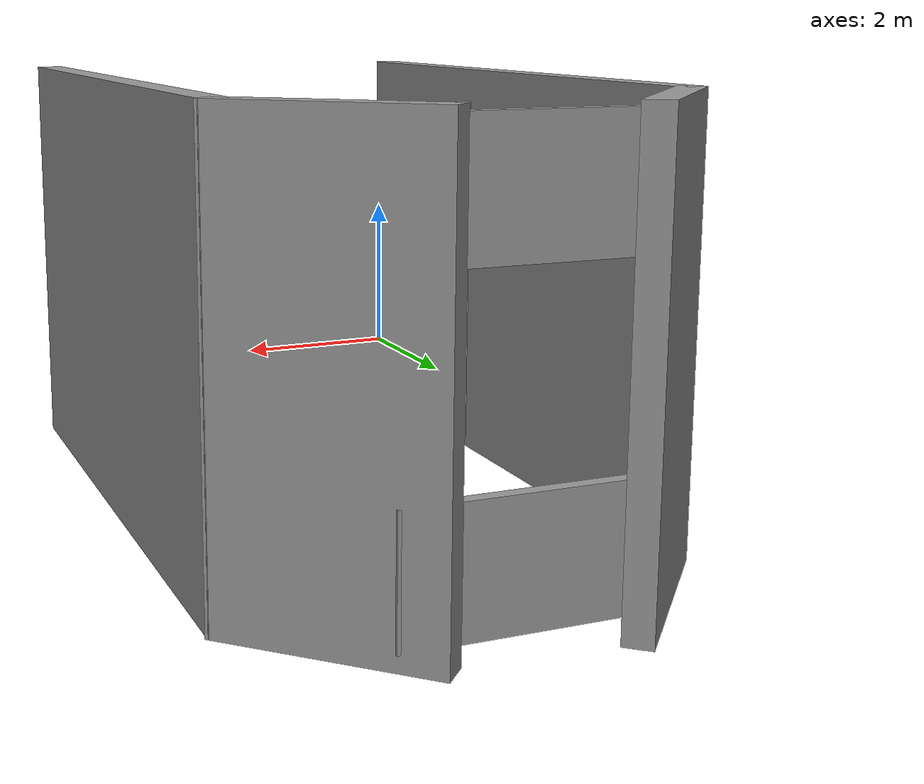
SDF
<?xml version='1.0'?>
<sdf version='1.7'>
  <model name='tembok_kematian'>
    <link name='link'>
      <inertial>
        <mass>8.31484</mass>
        <inertia>
          <ixx>45.0049</ixx>
          <ixy>0</ixy>
          <ixz>0</ixz>
          <iyy>13.7643</iyy>
          <iyz>0</iyz>
          <izz>31.3477</izz>
        </inertia>
        <pose>0 0 0 0 -0 0</pose>
      </inertial>
      <self_collide>0</self_collide>
      <enable_wind>0</enable_wind>
      <kinematic>0</kinematic>
      <pose>5.02148 5.10838 1.90447 0 -0 0</pose>
      <gravity>0</gravity>
      <visual name='visual'>
        <geometry>
          <box>
            <size>0.27805 6.7204 4.44831</size>
          </box>
        </geometry>
        <material>
          <script>
            <name>Gazebo/Grey</name>
            <uri>file://media/materials/scripts/gazebo.material</uri>
          </script>
          <shader type='pixel'>
            <normal_map>__default__</normal_map>
          </shader>
          <emissive>0 0 0 1</emissive>
        </material>
        <pose>0 0 0 0 -0 0</pose>
        <transparency>0</transparency>
        <cast_shadows>1</cast_shadows>
      </visual>
      <collision name='collision'>
        <laser_retro>0</laser_retro>
        <max_contacts>10</max_contacts>
        <pose>0 0 0 0 -0 0</pose>
        <geometry>
          <box>
            <size>0.27805 6.7204 4.44831</size>
          </box>
        </geometry>
        <surface>
          <friction>
            <ode>
              <mu>1</mu>
              <mu2>1</mu2>
              <fdir1>0 0 0</fdir1>
              <slip1>0</slip1>
              <slip2>0</slip2>
            </ode>
            <torsional>
              <coefficient>1</coefficient>
              <patch_radius>0</patch_radius>
              <surface_radius>0</surface_radius>
              <use_patch_radius>1</use_patch_radius>
              <ode>
                <slip>0</slip>
              </ode>
            </torsional>
          </friction>
          <bounce>
            <restitution_coefficient>0</restitution_coefficient>
            <threshold>1e+06</threshold>
          </bounce>
          <contact>
            <collide_without_contact>0</collide_without_contact>
            <collide_without_contact_bitmask>1</collide_without_contact_bitmask>
            <collide_bitmask>1</collide_bitmask>
            <ode>
              <soft_cfm>0</soft_cfm>
              <soft_erp>0.2</soft_erp>
              <kp>1e+13</kp>
              <kd>1</kd>
              <max_vel>0.01</max_vel>
              <min_depth>0</min_depth>
            </ode>
            <bullet>
              <split_impulse>1</split_impulse>
              <split_impulse_penetration_threshold>-0.01</split_impulse_penetration_threshold>
              <soft_cfm>0</soft_cfm>
              <soft_erp>0.2</soft_erp>
              <kp>1e+13</kp>
              <kd>1</kd>
            </bullet>
          </contact>
        </surface>
      </collision>
    </link>
    <link name='link_clone'>
      <inertial>
        <mass>8.43633</mass>
        <inertia>
          <ixx>46.6025</ixx>
          <ixy>0</ixy>
          <ixz>0</ixz>
          <iyy>13.9655</iyy>
          <iyz>0</iyz>
          <izz>32.7458</izz>
        </inertia>
        <pose>0 0 0 0 -0 0</pose>
      </inertial>
      <self_collide>0</self_collide>
      <enable_wind>0</enable_wind>
      <kinematic>0</kinematic>
      <pose>0.602375 5.06403 1.90447 0 -0 0</pose>
      <gravity>0</gravity>
      <visual name='visual'>
        <geometry>
          <box>
            <size>0.27805 6.81916 4.44831</size>
          </box>
        </geometry>
        <material>
          <script>
            <name>Gazebo/Grey</name>
            <uri>file://media/materials/scripts/gazebo.material</uri>
          </script>
          <shader type='pixel'>
            <normal_map>__default__</normal_map>
          </shader>
          <emissive>0 0 0 1</emissive>
        </material>
        <pose>0 0 0 0 -0 0</pose>
        <transparency>0</transparency>
        <cast_shadows>1</cast_shadows>
      </visual>
      <collision name='collision'>
        <laser_retro>0</laser_retro>
        <max_contacts>10</max_contacts>
        <pose>0 0 0 0 -0 0</pose>
        <geometry>
          <box>
            <size>0.27805 6.81916 4.44831</size>
          </box>
        </geometry>
        <surface>
          <friction>
            <ode>
              <mu>1</mu>
              <mu2>1</mu2>
              <fdir1>0 0 0</fdir1>
              <slip1>0</slip1>
              <slip2>0</slip2>
            </ode>
            <torsional>
              <coefficient>1</coefficient>
              <patch_radius>0</patch_radius>
              <surface_radius>0</surface_radius>
              <use_patch_radius>1</use_patch_radius>
              <ode>
                <slip>0</slip>
              </ode>
            </torsional>
          </friction>
          <bounce>
            <restitution_coefficient>0</restitution_coefficient>
            <threshold>1e+06</threshold>
          </bounce>
          <contact>
            <collide_without_contact>0</collide_without_contact>
            <collide_without_contact_bitmask>1</collide_without_contact_bitmask>
            <collide_bitmask>1</collide_bitmask>
            <ode>
              <soft_cfm>0</soft_cfm>
              <soft_erp>0.2</soft_erp>
              <kp>1e+13</kp>
              <kd>1</kd>
              <max_vel>0.01</max_vel>
              <min_depth>0</min_depth>
            </ode>
            <bullet>
              <split_impulse>1</split_impulse>
              <split_impulse_penetration_threshold>-0.01</split_impulse_penetration_threshold>
              <soft_cfm>0</soft_cfm>
              <soft_erp>0.2</soft_erp>
              <kp>1e+13</kp>
              <kd>1</kd>
            </bullet>
          </contact>
        </surface>
      </collision>
    </link>
    <link name='link_clone_0'>
      <inertial>
        <mass>0.755513</mass>
        <inertia>
          <ixx>1.3548</ixx>
          <ixy>0</ixy>
          <ixz>0</ixz>
          <iyy>0.118161</iyy>
          <iyz>0</iyz>
          <izz>1.23861</izz>
        </inertia>
        <pose>0 0 0 0 -0 0</pose>
      </inertial>
      <self_collide>0</self_collide>
      <enable_wind>0</enable_wind>
      <kinematic>0</kinematic>
      <pose>2.78886 2.00997 1.50785 0 -0 1.55834</pose>
      <gravity>0</gravity>
      <visual name='visual'>
        <geometry>
          <box>
            <size>0.125195 4.43368 1.36422</size>
          </box>
        </geometry>
        <material>
          <script>
            <name>Gazebo/Grey</name>
            <uri>file://media/materials/scripts/gazebo.material</uri>
          </script>
          <shader type='pixel'>
            <normal_map>__default__</normal_map>
          </shader>
          <emissive>0 0 0 1</emissive>
        </material>
        <pose>0 0 0 0 -0 0</pose>
        <transparency>0</transparency>
        <cast_shadows>1</cast_shadows>
      </visual>
      <collision name='collision'>
        <laser_retro>0</laser_retro>
        <max_contacts>10</max_contacts>
        <pose>0 0 0 0 -0 0</pose>
        <geometry>
          <box>
            <size>0.125195 4.43368 1.36422</size>
          </box>
        </geometry>
        <surface>
          <friction>
            <ode>
              <mu>1</mu>
              <mu2>1</mu2>
              <fdir1>0 0 0</fdir1>
              <slip1>0</slip1>
              <slip2>0</slip2>
            </ode>
            <torsional>
              <coefficient>1</coefficient>
              <patch_radius>0</patch_radius>
              <surface_radius>0</surface_radius>
              <use_patch_radius>1</use_patch_radius>
              <ode>
                <slip>0</slip>
              </ode>
            </torsional>
          </friction>
          <bounce>
            <restitution_coefficient>0</restitution_coefficient>
            <threshold>1e+06</threshold>
          </bounce>
          <contact>
            <collide_without_contact>0</collide_without_contact>
            <collide_without_contact_bitmask>1</collide_without_contact_bitmask>
            <collide_bitmask>1</collide_bitmask>
            <ode>
              <soft_cfm>0</soft_cfm>
              <soft_erp>0.2</soft_erp>
              <kp>1e+13</kp>
              <kd>1</kd>
              <max_vel>0.01</max_vel>
              <min_depth>0</min_depth>
            </ode>
            <bullet>
              <split_impulse>1</split_impulse>
              <split_impulse_penetration_threshold>-0.01</split_impulse_penetration_threshold>
              <soft_cfm>0</soft_cfm>
              <soft_erp>0.2</soft_erp>
              <kp>1e+13</kp>
              <kd>1</kd>
            </bullet>
          </contact>
        </surface>
      </collision>
    </link>
    <link name='link_clone_0_clone'>
      <inertial>
        <mass>1.40364</mass>
        <inertia>
          <ixx>2.78993</ixx>
          <ixy>0</ixy>
          <ixz>0</ixz>
          <iyy>1.8637</iyy>
          <iyz>0</iyz>
          <izz>0.9299</izz>
        </inertia>
        <pose>0 0 0 0 -0 0</pose>
      </inertial>
      <self_collide>0</self_collide>
      <enable_wind>0</enable_wind>
      <kinematic>0</kinematic>
      <pose>2.02435 4.28959 1.77584 0 -0 1.55834</pose>
      <gravity>0</gravity>
      <visual name='visual'>
        <geometry>
          <box>
            <size>0.125195 2.81678 3.98968</size>
          </box>
        </geometry>
        <material>
          <script>
            <name>Gazebo/Grey</name>
            <uri>file://media/materials/scripts/gazebo.material</uri>
          </script>
          <shader type='pixel'>
            <normal_map>__default__</normal_map>
          </shader>
          <emissive>0 0 0 1</emissive>
        </material>
        <pose>0 0 0 0 -0 0</pose>
        <transparency>0</transparency>
        <cast_shadows>1</cast_shadows>
      </visual>
      <collision name='collision'>
        <laser_retro>0</laser_retro>
        <max_contacts>10</max_contacts>
        <pose>0 0 0 0 -0 0</pose>
        <geometry>
          <box>
            <size>0.125195 2.81678 3.98968</size>
          </box>
        </geometry>
        <surface>
          <friction>
            <ode>
              <mu>1</mu>
              <mu2>1</mu2>
              <fdir1>0 0 0</fdir1>
              <slip1>0</slip1>
              <slip2>0</slip2>
            </ode>
            <torsional>
              <coefficient>1</coefficient>
              <patch_radius>0</patch_radius>
              <surface_radius>0</surface_radius>
              <use_patch_radius>1</use_patch_radius>
              <ode>
                <slip>0</slip>
              </ode>
            </torsional>
          </friction>
          <bounce>
            <restitution_coefficient>0</restitution_coefficient>
            <threshold>1e+06</threshold>
          </bounce>
          <contact>
            <collide_without_contact>0</collide_without_contact>
            <collide_without_contact_bitmask>1</collide_without_contact_bitmask>
            <collide_bitmask>1</collide_bitmask>
            <ode>
              <soft_cfm>0</soft_cfm>
              <soft_erp>0.2</soft_erp>
              <kp>1e+13</kp>
              <kd>1</kd>
              <max_vel>0.01</max_vel>
              <min_depth>0</min_depth>
            </ode>
            <bullet>
              <split_impulse>1</split_impulse>
              <split_impulse_penetration_threshold>-0.01</split_impulse_penetration_threshold>
              <soft_cfm>0</soft_cfm>
              <soft_erp>0.2</soft_erp>
              <kp>1e+13</kp>
              <kd>1</kd>
            </bullet>
          </contact>
        </surface>
      </collision>
    </link>
    <link name='link_clone_0_clone_0'>
      <inertial>
        <mass>0.362019</mass>
        <inertia>
          <ixx>0.220077</ixx>
          <ixy>0</ixy>
          <ixz>0</ixz>
          <iyy>0.0436996</iyy>
          <iyz>0</iyz>
          <izz>0.177323</izz>
        </inertia>
        <pose>0 0 0 0 -0 0</pose>
      </inertial>
      <self_collide>0</self_collide>
      <enable_wind>0</enable_wind>
      <kinematic>0</kinematic>
      <pose>2.76694 9.59905 0.435079 0 -0 1.55834</pose>
      <gravity>0</gravity>
      <visual name='visual'>
        <geometry>
          <box>
            <size>0.125195 2.42118 1.19702</size>
          </box>
        </geometry>
        <material>
          <script>
            <name>Gazebo/Grey</name>
            <uri>file://media/materials/scripts/gazebo.material</uri>
          </script>
          <shader type='pixel'>
            <normal_map>__default__</normal_map>
          </shader>
          <emissive>0 0 0 1</emissive>
        </material>
        <pose>0 0 0 0 -0 0</pose>
        <transparency>0</transparency>
        <cast_shadows>1</cast_shadows>
      </visual>
      <collision name='collision'>
        <laser_retro>0</laser_retro>
        <max_contacts>10</max_contacts>
        <pose>0 0 0 0 -0 0</pose>
        <geometry>
          <box>
            <size>0.125195 2.42118 1.19702</size>
          </box>
        </geometry>
        <surface>
          <friction>
            <ode>
              <mu>1</mu>
              <mu2>1</mu2>
              <fdir1>0 0 0</fdir1>
              <slip1>0</slip1>
              <slip2>0</slip2>
            </ode>
            <torsional>
              <coefficient>1</coefficient>
              <patch_radius>0</patch_radius>
              <surface_radius>0</surface_radius>
              <use_patch_radius>1</use_patch_radius>
              <ode>
                <slip>0</slip>
              </ode>
            </torsional>
          </friction>
          <bounce>
            <restitution_coefficient>0</restitution_coefficient>
            <threshold>1e+06</threshold>
          </bounce>
          <contact>
            <collide_without_contact>0</collide_without_contact>
            <collide_without_contact_bitmask>1</collide_without_contact_bitmask>
            <collide_bitmask>1</collide_bitmask>
            <ode>
              <soft_cfm>0</soft_cfm>
              <soft_erp>0.2</soft_erp>
              <kp>1e+13</kp>
              <kd>1</kd>
              <max_vel>0.01</max_vel>
              <min_depth>0</min_depth>
            </ode>
            <bullet>
              <split_impulse>1</split_impulse>
              <split_impulse_penetration_threshold>-0.01</split_impulse_penetration_threshold>
              <soft_cfm>0</soft_cfm>
              <soft_erp>0.2</soft_erp>
              <kp>1e+13</kp>
              <kd>1</kd>
            </bullet>
          </contact>
        </surface>
      </collision>
    </link>
    <link name='link_clone_0_clone_0_clone'>
      <inertial>
        <mass>0.362019</mass>
        <inertia>
          <ixx>0.220077</ixx>
          <ixy>0</ixy>
          <ixz>0</ixz>
          <iyy>0.0436996</iyy>
          <iyz>0</iyz>
          <izz>0.177323</izz>
        </inertia>
        <pose>0 0 0 0 -0 0</pose>
      </inertial>
      <self_collide>0</self_collide>
      <enable_wind>0</enable_wind>
      <kinematic>0</kinematic>
      <pose>2.72972 9.51919 3.45775 0 -0 1.55834</pose>
      <gravity>0</gravity>
      <visual name='visual'>
        <geometry>
          <box>
            <size>0.125195 2.42118 1.19702</size>
          </box>
        </geometry>
        <material>
          <script>
            <name>Gazebo/Grey</name>
            <uri>file://media/materials/scripts/gazebo.material</uri>
          </script>
          <shader type='pixel'>
            <normal_map>__default__</normal_map>
          </shader>
          <emissive>0 0 0 1</emissive>
        </material>
        <pose>0 0 0 0 -0 0</pose>
        <transparency>0</transparency>
        <cast_shadows>1</cast_shadows>
      </visual>
      <collision name='collision'>
        <laser_retro>0</laser_retro>
        <max_contacts>10</max_contacts>
        <pose>0 0 0 0 -0 0</pose>
        <geometry>
          <box>
            <size>0.125195 2.42118 1.19702</size>
          </box>
        </geometry>
        <surface>
          <friction>
            <ode>
              <mu>1</mu>
              <mu2>1</mu2>
              <fdir1>0 0 0</fdir1>
              <slip1>0</slip1>
              <slip2>0</slip2>
            </ode>
            <torsional>
              <coefficient>1</coefficient>
              <patch_radius>0</patch_radius>
              <surface_radius>0</surface_radius>
              <use_patch_radius>1</use_patch_radius>
              <ode>
                <slip>0</slip>
              </ode>
            </torsional>
          </friction>
          <bounce>
            <restitution_coefficient>0</restitution_coefficient>
            <threshold>1e+06</threshold>
          </bounce>
          <contact>
            <collide_without_contact>0</collide_without_contact>
            <collide_without_contact_bitmask>1</collide_without_contact_bitmask>
            <collide_bitmask>1</collide_bitmask>
            <ode>
              <soft_cfm>0</soft_cfm>
              <soft_erp>0.2</soft_erp>
              <kp>1e+13</kp>
              <kd>1</kd>
              <max_vel>0.01</max_vel>
              <min_depth>0</min_depth>
            </ode>
            <bullet>
              <split_impulse>1</split_impulse>
              <split_impulse_penetration_threshold>-0.01</split_impulse_penetration_threshold>
              <soft_cfm>0</soft_cfm>
              <soft_erp>0.2</soft_erp>
              <kp>1e+13</kp>
              <kd>1</kd>
            </bullet>
          </contact>
        </surface>
      </collision>
    </link>
    <link name='link_clone_0_clone_clone'>
      <inertial>
        <mass>1.40364</mass>
        <inertia>
          <ixx>2.78993</ixx>
          <ixy>0</ixy>
          <ixz>0</ixz>
          <iyy>1.8637</iyy>
          <iyz>0</iyz>
          <izz>0.9299</izz>
        </inertia>
        <pose>0 0 0 0 -0 0</pose>
      </inertial>
      <self_collide>0</self_collide>
      <enable_wind>0</enable_wind>
      <kinematic>0</kinematic>
      <pose>3.66575 6.89425 1.77584 0 -0 1.55834</pose>
      <gravity>0</gravity>
      <visual name='visual'>
        <geometry>
          <box>
            <size>0.125195 2.81678 3.98968</size>
          </box>
        </geometry>
        <material>
          <script>
            <name>Gazebo/Grey</name>
            <uri>file://media/materials/scripts/gazebo.material</uri>
          </script>
          <shader type='pixel'>
            <normal_map>__default__</normal_map>
          </shader>
          <emissive>0 0 0 1</emissive>
        </material>
        <pose>0 0 0 0 -0 0</pose>
        <transparency>0</transparency>
        <cast_shadows>1</cast_shadows>
      </visual>
      <collision name='collision'>
        <laser_retro>0</laser_retro>
        <max_contacts>10</max_contacts>
        <pose>0 0 0 0 -0 0</pose>
        <geometry>
          <box>
            <size>0.125195 2.81678 3.98968</size>
          </box>
        </geometry>
        <surface>
          <friction>
            <ode>
              <mu>1</mu>
              <mu2>1</mu2>
              <fdir1>0 0 0</fdir1>
              <slip1>0</slip1>
              <slip2>0</slip2>
            </ode>
            <torsional>
              <coefficient>1</coefficient>
              <patch_radius>0</patch_radius>
              <surface_radius>0</surface_radius>
              <use_patch_radius>1</use_patch_radius>
              <ode>
                <slip>0</slip>
              </ode>
            </torsional>
          </friction>
          <bounce>
            <restitution_coefficient>0</restitution_coefficient>
            <threshold>1e+06</threshold>
          </bounce>
          <contact>
            <collide_without_contact>0</collide_without_contact>
            <collide_without_contact_bitmask>1</collide_without_contact_bitmask>
            <collide_bitmask>1</collide_bitmask>
            <ode>
              <soft_cfm>0</soft_cfm>
              <soft_erp>0.2</soft_erp>
              <kp>1e+13</kp>
              <kd>1</kd>
              <max_vel>0.01</max_vel>
              <min_depth>0</min_depth>
            </ode>
            <bullet>
              <split_impulse>1</split_impulse>
              <split_impulse_penetration_threshold>-0.01</split_impulse_penetration_threshold>
              <soft_cfm>0</soft_cfm>
              <soft_erp>0.2</soft_erp>
              <kp>1e+13</kp>
              <kd>1</kd>
            </bullet>
          </contact>
        </surface>
      </collision>
    </link>
    <link name='link_clone_clone'>
      <inertial>
        <mass>2.63677</mass>
        <inertia>
          <ixx>5.34606</ixx>
          <ixy>0</ixy>
          <ixz>0</ixz>
          <iyy>4.3649</iyy>
          <iyz>0</iyz>
          <izz>1.01513</izz>
        </inertia>
        <pose>0 0 0 0 -0 0</pose>
      </inertial>
      <self_collide>0</self_collide>
      <enable_wind>0</enable_wind>
      <kinematic>0</kinematic>
      <pose>1.26673 9.16575 1.90447 0 0 -0.726763</pose>
      <gravity>0</gravity>
      <visual name='visual'>
        <geometry>
          <box>
            <size>0.27805 2.13133 4.44831</size>
          </box>
        </geometry>
        <material>
          <script>
            <name>Gazebo/Grey</name>
            <uri>file://media/materials/scripts/gazebo.material</uri>
          </script>
          <shader type='pixel'>
            <normal_map>__default__</normal_map>
          </shader>
          <emissive>0 0 0 1</emissive>
        </material>
        <pose>0 0 0 0 -0 0</pose>
        <transparency>0</transparency>
        <cast_shadows>1</cast_shadows>
      </visual>
      <collision name='collision'>
        <laser_retro>0</laser_retro>
        <max_contacts>10</max_contacts>
        <pose>0 0 0 0 -0 0</pose>
        <geometry>
          <box>
            <size>0.27805 2.13133 4.44831</size>
          </box>
        </geometry>
        <surface>
          <friction>
            <ode>
              <mu>1</mu>
              <mu2>1</mu2>
              <fdir1>0 0 0</fdir1>
              <slip1>0</slip1>
              <slip2>0</slip2>
            </ode>
            <torsional>
              <coefficient>1</coefficient>
              <patch_radius>0</patch_radius>
              <surface_radius>0</surface_radius>
              <use_patch_radius>1</use_patch_radius>
              <ode>
                <slip>0</slip>
              </ode>
            </torsional>
          </friction>
          <bounce>
            <restitution_coefficient>0</restitution_coefficient>
            <threshold>1e+06</threshold>
          </bounce>
          <contact>
            <collide_without_contact>0</collide_without_contact>
            <collide_without_contact_bitmask>1</collide_without_contact_bitmask>
            <collide_bitmask>1</collide_bitmask>
            <ode>
              <soft_cfm>0</soft_cfm>
              <soft_erp>0.2</soft_erp>
              <kp>1e+13</kp>
              <kd>1</kd>
              <max_vel>0.01</max_vel>
              <min_depth>0</min_depth>
            </ode>
            <bullet>
              <split_impulse>1</split_impulse>
              <split_impulse_penetration_threshold>-0.01</split_impulse_penetration_threshold>
              <soft_cfm>0</soft_cfm>
              <soft_erp>0.2</soft_erp>
              <kp>1e+13</kp>
              <kd>1</kd>
            </bullet>
          </contact>
        </surface>
      </collision>
    </link>
    <link name='link_clone_clone_clone'>
      <inertial>
        <mass>2.63748</mass>
        <inertia>
          <ixx>5.34802</ixx>
          <ixy>0</ixy>
          <ixz>0</ixz>
          <iyy>4.36607</iyy>
          <iyz>0</iyz>
          <izz>1.01594</izz>
        </inertia>
        <pose>0 0 0 0 -0 0</pose>
      </inertial>
      <self_collide>0</self_collide>
      <enable_wind>0</enable_wind>
      <kinematic>0</kinematic>
      <pose>4.32028 9.08735 1.90447 0 -0 0.798038</pose>
      <gravity>0</gravity>
      <visual name='visual'>
        <geometry>
          <box>
            <size>0.27805 2.1319 4.44831</size>
          </box>
        </geometry>
        <material>
          <script>
            <name>Gazebo/Grey</name>
            <uri>file://media/materials/scripts/gazebo.material</uri>
          </script>
          <shader type='pixel'>
            <normal_map>__default__</normal_map>
          </shader>
          <emissive>0 0 0 1</emissive>
        </material>
        <pose>0 0 0 0 -0 0</pose>
        <transparency>0</transparency>
        <cast_shadows>1</cast_shadows>
      </visual>
      <collision name='collision'>
        <laser_retro>0</laser_retro>
        <max_contacts>10</max_contacts>
        <pose>0 0 0 0 -0 0</pose>
        <geometry>
          <box>
            <size>0.27805 2.1319 4.44831</size>
          </box>
        </geometry>
        <surface>
          <friction>
            <ode>
              <mu>1</mu>
              <mu2>1</mu2>
              <fdir1>0 0 0</fdir1>
              <slip1>0</slip1>
              <slip2>0</slip2>
            </ode>
            <torsional>
              <coefficient>1</coefficient>
              <patch_radius>0</patch_radius>
              <surface_radius>0</surface_radius>
              <use_patch_radius>1</use_patch_radius>
              <ode>
                <slip>0</slip>
              </ode>
            </torsional>
          </friction>
          <bounce>
            <restitution_coefficient>0</restitution_coefficient>
            <threshold>1e+06</threshold>
          </bounce>
          <contact>
            <collide_without_contact>0</collide_without_contact>
            <collide_without_contact_bitmask>1</collide_without_contact_bitmask>
            <collide_bitmask>1</collide_bitmask>
            <ode>
              <soft_cfm>0</soft_cfm>
              <soft_erp>0.2</soft_erp>
              <kp>1e+13</kp>
              <kd>1</kd>
              <max_vel>0.01</max_vel>
              <min_depth>0</min_depth>
            </ode>
            <bullet>
              <split_impulse>1</split_impulse>
              <split_impulse_penetration_threshold>-0.01</split_impulse_penetration_threshold>
              <soft_cfm>0</soft_cfm>
              <soft_erp>0.2</soft_erp>
              <kp>1e+13</kp>
              <kd>1</kd>
            </bullet>
          </contact>
        </surface>
      </collision>
    </link>
    <joint name='link_JOINT_2' type='fixed'>
      <parent>link</parent>
      <child>link_clone_0</child>
      <pose>0 0 0 0 -0 0</pose>
      <physics>
        <ode>
          <limit>
            <cfm>0</cfm>
            <erp>0.2</erp>
          </limit>
          <suspension>
            <cfm>0</cfm>
            <erp>0.2</erp>
          </suspension>
        </ode>
      </physics>
    </joint>
    <joint name='link_JOINT_3' type='fixed'>
      <parent>link</parent>
      <child>link_clone_0_clone_clone</child>
      <pose>0 0 0 0 -0 0</pose>
      <physics>
        <ode>
          <limit>
            <cfm>0</cfm>
            <erp>0.2</erp>
          </limit>
          <suspension>
            <cfm>0</cfm>
            <erp>0.2</erp>
          </suspension>
        </ode>
      </physics>
    </joint>
    <joint name='link_JOINT_5' type='fixed'>
      <parent>link</parent>
      <child>link_clone_clone_clone</child>
      <pose>0 0 0 0 -0 0</pose>
      <physics>
        <ode>
          <limit>
            <cfm>0</cfm>
            <erp>0.2</erp>
          </limit>
          <suspension>
            <cfm>0</cfm>
            <erp>0.2</erp>
          </suspension>
        </ode>
      </physics>
    </joint>
    <joint name='link_clone_JOINT_0' type='fixed'>
      <parent>link_clone</parent>
      <child>link_clone_0</child>
      <pose>0 0 0 0 -0 0</pose>
      <physics>
        <ode>
          <limit>
            <cfm>0</cfm>
            <erp>0.2</erp>
          </limit>
          <suspension>
            <cfm>0</cfm>
            <erp>0.2</erp>
          </suspension>
        </ode>
      </physics>
    </joint>
    <joint name='link_clone_JOINT_1' type='fixed'>
      <parent>link_clone</parent>
      <child>link_clone_0_clone</child>
      <pose>0 0 0 0 -0 0</pose>
      <physics>
        <ode>
          <limit>
            <cfm>0</cfm>
            <erp>0.2</erp>
          </limit>
          <suspension>
            <cfm>0</cfm>
            <erp>0.2</erp>
          </suspension>
        </ode>
      </physics>
    </joint>
    <joint name='link_clone_JOINT_4' type='fixed'>
      <parent>link_clone</parent>
      <child>link_clone_clone</child>
      <pose>0 0 0 0 -0 0</pose>
      <physics>
        <ode>
          <limit>
            <cfm>0</cfm>
            <erp>0.2</erp>
          </limit>
          <suspension>
            <cfm>0</cfm>
            <erp>0.2</erp>
          </suspension>
        </ode>
      </physics>
    </joint>
    <joint name='link_clone_clone_JOINT_6' type='fixed'>
      <parent>link_clone_clone</parent>
      <child>link_clone_0_clone_0_clone</child>
      <pose>0 0 0 0 -0 0</pose>
      <physics>
        <ode>
          <limit>
            <cfm>0</cfm>
            <erp>0.2</erp>
          </limit>
          <suspension>
            <cfm>0</cfm>
            <erp>0.2</erp>
          </suspension>
        </ode>
      </physics>
    </joint>
    <joint name='link_clone_clone_JOINT_7' type='fixed'>
      <parent>link_clone_clone</parent>
      <child>link_clone_0_clone_0</child>
      <pose>0 0 0 0 -0 0</pose>
      <physics>
        <ode>
          <limit>
            <cfm>0</cfm>
            <erp>0.2</erp>
          </limit>
          <suspension>
            <cfm>0</cfm>
            <erp>0.2</erp>
          </suspension>
        </ode>
      </physics>
    </joint>
    <joint name='link_clone_clone_clone_JOINT_8' type='fixed'>
      <parent>link_clone_clone_clone</parent>
      <child>link_clone_0_clone_0_clone</child>
      <pose>0 0 0 0 -0 0</pose>
      <physics>
        <ode>
          <limit>
            <cfm>0</cfm>
            <erp>0.2</erp>
          </limit>
          <suspension>
            <cfm>0</cfm>
            <erp>0.2</erp>
          </suspension>
        </ode>
      </physics>
    </joint>
    <joint name='link_clone_clone_clone_JOINT_9' type='fixed'>
      <parent>link_clone_clone_clone</parent>
      <child>link_clone_0_clone_0</child>
      <pose>0 0 0 0 -0 0</pose>
      <physics>
        <ode>
          <limit>
            <cfm>0</cfm>
            <erp>0.2</erp>
          </limit>
          <suspension>
            <cfm>0</cfm>
            <erp>0.2</erp>
          </suspension>
        </ode>
      </physics>
    </joint>
    <static>0</static>
    <allow_auto_disable>1</allow_auto_disable>
  </model>
</sdf>
